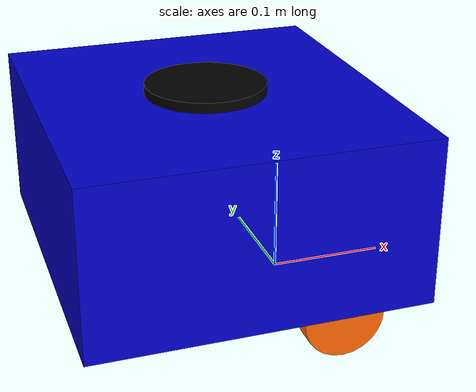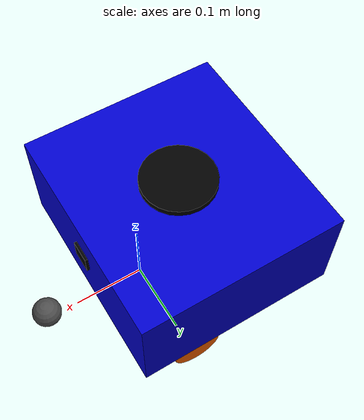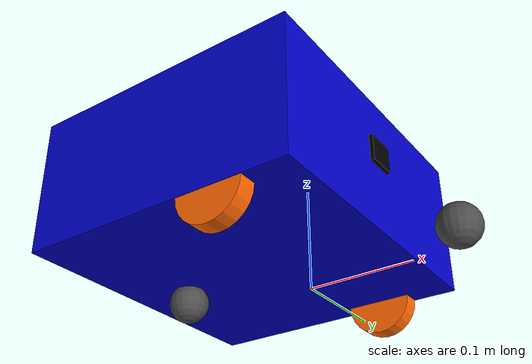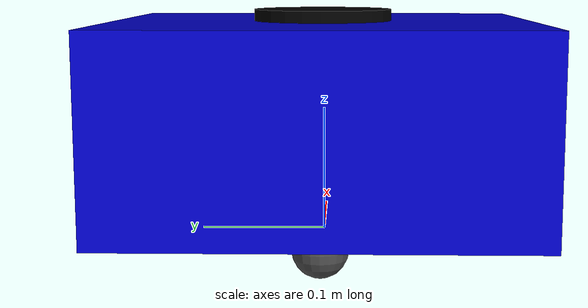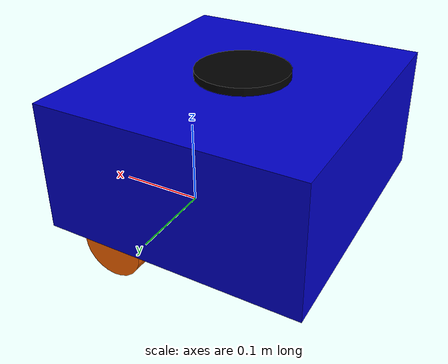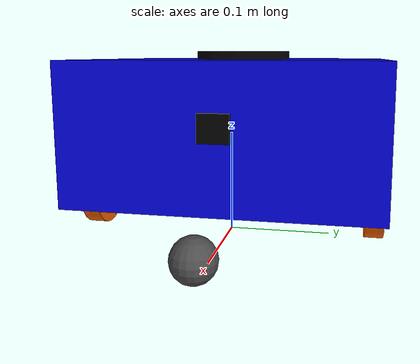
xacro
<?xml version="1.0"?>
<robot name="disaster_robot" xmlns:xacro="http://www.ros.org/wiki/xacro">
  <xacro:property name="robot_name"         value="disaster_robot"/>
  <xacro:property name="base_length"        value="0.281"/>
  <xacro:property name="base_width"         value="0.306"/>
  <xacro:property name="base_height"        value="0.141"/>
  <xacro:property name="base_mass"          value="1.3729096"/>
  <xacro:property name="wheel_radius"       value="0.033"/>
  <xacro:property name="wheel_width"        value="0.018"/>
  <xacro:property name="wheel_mass"         value="0.02850"/>
  <xacro:property name="wheel_separation"   value="0.287"/>  <!-- distance between wheel centres -->
  <xacro:property name="caster_radius"      value="0.020"/>

  <xacro:property name="lidar_x"            value="-0.064"/>
  <xacro:property name="lidar_y"            value="0.0"/>
  <xacro:property name="lidar_z"            value="0.122"/>
  <xacro:property name="lidar_range_min"    value="0.25"/>  <!-- increased: 0.12 caused self-hits -->
  <xacro:property name="lidar_range_max"    value="12.0"/>
  <xacro:property name="lidar_samples"      value="360"/>
  <xacro:property name="lidar_update_rate"  value="10"/>

  <xacro:property name="camera_x"           value="0.073"/>
  <xacro:property name="camera_y"           value="0.0"/>
  <xacro:property name="camera_z"           value="0.082"/>
  <xacro:property name="camera_width"       value="640"/>
  <xacro:property name="camera_height"      value="480"/>
  <xacro:property name="camera_fps"         value="30"/>
  <xacro:property name="camera_fov"         value="1.3962634"/>  <!-- 80 degrees -->

  <material name="black">  <color rgba="0.0 0.0 0.0 1.0"/></material>
  <material name="dark">   <color rgba="0.3 0.3 0.3 1.0"/></material>
  <material name="light">  <color rgba="0.8 0.8 0.8 1.0"/></material>
  <material name="blue">   <color rgba="0.0 0.0 0.8 1.0"/></material>
  <material name="green">  <color rgba="0.0 0.8 0.0 1.0"/></material>
  <material name="grey">   <color rgba="0.5 0.5 0.5 1.0"/></material>
  <material name="orange"> <color rgba="1.0 0.4 0.0 1.0"/></material>
  <material name="white">  <color rgba="1.0 1.0 1.0 1.0"/></material>

  <xacro:macro name="inertia_box" params="m x y z">
    <inertial>
      <mass value="${m}"/>
      <inertia ixx="${m*(y*y+z*z)/12}" ixy="0" ixz="0"
               iyy="${m*(x*x+z*z)/12}" iyz="0"
               izz="${m*(x*x+y*y)/12}"/>
    </inertial>
  </xacro:macro>

  <xacro:macro name="inertia_cylinder" params="m r h">
    <inertial>
      <mass value="${m}"/>
      <inertia ixx="${m*(3*r*r+h*h)/12}" ixy="0" ixz="0"
               iyy="${m*(3*r*r+h*h)/12}" iyz="0"
               izz="${m*r*r/2}"/>
    </inertial>
  </xacro:macro>

  <xacro:macro name="inertia_sphere" params="m r">
    <inertial>
      <mass value="${m}"/>
      <inertia ixx="${2*m*r*r/5}" ixy="0" ixz="0"
               iyy="${2*m*r*r/5}" iyz="0"
               izz="${2*m*r*r/5}"/>
    </inertial>
  </xacro:macro>

  <link name="base_footprint"/>

  <joint name="base_joint" type="fixed">
    <parent link="base_footprint"/>
    <child  link="base_link"/>
    <origin xyz="0 0 ${wheel_radius}" rpy="0 0 0"/>
  </joint>

  <link name="base_link">
    <visual>
      <origin xyz="-0.064 0 ${base_height/2}" rpy="0 0 0"/>
      <geometry>
        <box size="${base_length} ${base_width} ${base_height}"/>
      </geometry>
      <material name="blue"/>
    </visual>
    <collision>
      <origin xyz="-0.064 0 ${base_height/2}" rpy="0 0 0"/>  <!-- FIXED: bottom of body at wheel-center height, not 3.75cm underground -->
      <geometry>
        <box size="${base_length} ${base_width} ${base_height}"/>
      </geometry>
    </collision>
    <xacro:inertia_box m="${base_mass}" x="${base_length}" y="${base_width}" z="${base_height}"/>
  </link>

  <xacro:macro name="wheel" params="prefix y_reflect">
    <link name="${prefix}_wheel_link">
      <visual>
        <origin xyz="0 0 0" rpy="${pi/2} 0 0"/>
        <geometry>
          <cylinder radius="${wheel_radius}" length="${wheel_width}"/>
        </geometry>
        <material name="orange"/>
      </visual>
      <collision>
        <origin xyz="0 0 0" rpy="${pi/2} 0 0"/>
        <geometry>
          <cylinder radius="${wheel_radius}" length="${wheel_width}"/>
        </geometry>
      </collision>
      <xacro:inertia_cylinder m="${wheel_mass}" r="${wheel_radius}" h="${wheel_width}"/>
    </link>

    <joint name="${prefix}_wheel_joint" type="continuous">
      <parent link="base_link"/>
      <child  link="${prefix}_wheel_link"/>
      <origin xyz="0.0 ${y_reflect * wheel_separation / 2} 0.0" rpy="0 0 0"/>
      <axis xyz="0 1 0"/>
      <dynamics damping="0.001" friction="0.0"/>  <!-- minimal: joint friction was blocking motor -->
    </joint>
  </xacro:macro>

  <xacro:wheel prefix="left"  y_reflect=" 1"/>
  <xacro:wheel prefix="right" y_reflect="-1"/>

  <xacro:macro name="caster" params="prefix x_pos">
    <link name="${prefix}_caster_link">
      <visual>
        <origin xyz="0 0 0" rpy="0 0 0"/>
        <geometry><sphere radius="${caster_radius}"/></geometry>
        <material name="dark"/>
      </visual>
      <collision>
        <origin xyz="0 0 0" rpy="0 0 0"/>
        <geometry><sphere radius="${caster_radius}"/></geometry>
      </collision>
      <xacro:inertia_sphere m="0.005" r="${caster_radius}"/>
    </link>
    <joint name="${prefix}_caster_joint" type="fixed">
      <parent link="base_link"/>
      <child  link="${prefix}_caster_link"/>
      <origin xyz="${x_pos} 0 ${-wheel_radius + caster_radius}" rpy="0 0 0"/>
    </joint>
  </xacro:macro>

  <xacro:caster prefix="front" x_pos=" 0.1435"/>
  <xacro:caster prefix="rear"  x_pos="-0.1435"/>

  <link name="base_scan">
    <visual>
      <origin xyz="0 0 0" rpy="0 0 0"/>
      <geometry><cylinder radius="0.0508" length="0.055"/></geometry>
      <material name="black"/>
    </visual>
    <collision>
      <origin xyz="0 0 0" rpy="0 0 0"/>
      <geometry><cylinder radius="0.0508" length="0.055"/></geometry>
    </collision>
    <xacro:inertia_cylinder m="0.114" r="0.0508" h="0.055"/>
  </link>

  <joint name="scan_joint" type="fixed">
    <parent link="base_link"/>
    <child  link="base_scan"/>
    <origin xyz="${lidar_x} ${lidar_y} ${lidar_z}" rpy="0 0 0"/>
  </joint>

  <link name="camera_link">
    <visual>
      <origin xyz="0 0 0" rpy="0 0 0"/>
      <geometry><box size="0.015 0.030 0.027"/></geometry>
      <material name="black"/>
    </visual>
    <collision>
      <origin xyz="0 0 0" rpy="0 0 0"/>
      <geometry><box size="0.015 0.030 0.027"/></geometry>
    </collision>
    <xacro:inertia_box m="0.035" x="0.015" y="0.030" z="0.027"/>
  </link>

  <joint name="camera_joint" type="fixed">
    <parent link="base_link"/>
    <child  link="camera_link"/>
    <origin xyz="${camera_x} ${camera_y} ${camera_z}" rpy="0 0 0"/>
  </joint>

  <link name="camera_rgb_optical_frame"/>
  <joint name="camera_optical_joint" type="fixed">
    <parent link="camera_link"/>
    <child  link="camera_rgb_optical_frame"/>
    <origin xyz="0 0 0" rpy="${-pi/2} 0 ${-pi/2}"/>
  </joint>

  <!--  IMU SENSOR  -->
  <link name="imu_link">
    <visual>
      <origin xyz="0 0 0" rpy="0 0 0"/>
      <geometry><box size="0.01 0.01 0.01"/></geometry>
      <material name="grey"/>
    </visual>
    <collision>
      <origin xyz="0 0 0" rpy="0 0 0"/>
      <geometry><box size="0.01 0.01 0.01"/></geometry>
    </collision>
    <xacro:inertia_box m="0.01" x="0.01" y="0.01" z="0.01"/>
  </link>

  <joint name="imu_joint" type="fixed">
    <parent link="base_link"/>
    <child  link="imu_link"/>
    <origin xyz="-0.032 0 0.068" rpy="0 0 0"/>
  </joint>

  <gazebo reference="base_link">
    <material>Gazebo/Blue</material>
  </gazebo>
  <gazebo reference="left_wheel_link">
    <material>Gazebo/Orange</material>
  </gazebo>
  <gazebo reference="right_wheel_link">
    <material>Gazebo/Orange</material>
  </gazebo>
  <gazebo reference="camera_link">
    <material>Gazebo/Black</material>
  </gazebo>
  <gazebo reference="base_scan">
    <material>Gazebo/FlatBlack</material>
  </gazebo>

  <!--  Diff DRIVE  -->
  <gazebo>
    <plugin name="diff_drive_controller"
            filename="libgazebo_ros_diff_drive.so">

      <ros>
        <namespace>/</namespace>
      </ros>

      <left_joint>left_wheel_joint</left_joint>
      <right_joint>right_wheel_joint</right_joint>

      <wheel_separation>${wheel_separation}</wheel_separation>
      <wheel_diameter>${2 * wheel_radius}</wheel_diameter>

      <command_topic>/cmd_vel</command_topic>
      <odometry_topic>odom</odometry_topic>

      <odometry_frame>odom</odometry_frame>
      <robot_base_frame>base_footprint</robot_base_frame>

      <publish_odom>true</publish_odom>
      <publish_odom_tf>true</publish_odom_tf>

      <max_wheel_torque>20</max_wheel_torque>
      <max_wheel_acceleration>1.0</max_wheel_acceleration>
      <update_rate>30</update_rate>
    </plugin>
  </gazebo>

  <gazebo>
    <plugin name="joint_state_publisher"
            filename="libgazebo_ros_joint_state_publisher.so">
      <ros>
        <namespace>/</namespace>
      </ros>

      <update_rate>50</update_rate>

      <joint_name>left_wheel_joint</joint_name>
      <joint_name>right_wheel_joint</joint_name>
    </plugin>
  </gazebo>

  <gazebo reference="base_scan">
    <sensor type="ray" name="lidar_sensor">
      <pose>0 0 0 0 0 0</pose>
      <visualize>false</visualize>
      <update_rate>${lidar_update_rate}</update_rate>

      <ray>
        <scan>
          <horizontal>
            <samples>${lidar_samples}</samples>
            <resolution>1</resolution>
            <min_angle>-3.14159265</min_angle>
            <max_angle> 3.14159265</max_angle>
          </horizontal>
        </scan>
        <range>
          <min>${lidar_range_min}</min>
          <max>${lidar_range_max}</max>
          <resolution>0.015</resolution>
        </range>
        <!-- Gaussian noise to simulate real LiDAR -->
        <noise>
          <type>gaussian</type>
          <mean>0.0</mean>
          <stddev>0.01</stddev>
        </noise>
      </ray>

      <plugin name="lidar_ros_plugin" filename="libgazebo_ros_ray_sensor.so">
        <ros>
          <namespace>/</namespace>
          <remapping>~/out:=scan</remapping>
        </ros>
        <output_type>sensor_msgs/LaserScan</output_type>
        <frame_name>base_scan</frame_name>
      </plugin>
    </sensor>
  </gazebo>

  <gazebo reference="camera_link">
    <sensor type="camera" name="camera_sensor">
      <update_rate>${camera_fps}</update_rate>
      <visualize>false</visualize>

      <camera name="camera">
        <horizontal_fov>${camera_fov}</horizontal_fov>
        <image>
          <width>${camera_width}</width>
          <height>${camera_height}</height>
          <format>R8G8B8</format>
        </image>
        <clip>
          <near>0.02</near>
          <far>300</far>
        </clip>
        <!-- Noise to simulate real camera in dusty/dark conditions -->
        <noise>
          <type>gaussian</type>
          <mean>0.0</mean>
          <stddev>0.007</stddev>
        </noise>
      </camera>

      <plugin name="camera_ros_plugin" filename="libgazebo_ros_camera.so">
        <ros>
          <namespace>/</namespace>
          <remapping>image_raw:=camera/image_raw</remapping>
          <remapping>camera_info:=camera/camera_info</remapping>
        </ros>
        <camera_name>camera</camera_name>
        <frame_name>camera_rgb_optical_frame</frame_name>
        <hack_baseline>0.07</hack_baseline>
      </plugin>
    </sensor>
  </gazebo>

  <gazebo reference="imu_link">
    <sensor name="imu_sensor" type="imu">
      <always_on>true</always_on>
      <update_rate>200</update_rate>
      <visualize>false</visualize>

      <imu>
        <!-- Angular velocity noise (gyroscope) -->
        <angular_velocity>
          <x><noise type="gaussian"><mean>0.0</mean><stddev>2e-4</stddev><bias_mean>7.5e-6</bias_mean><bias_stddev>8e-7</bias_stddev></noise></x>
          <y><noise type="gaussian"><mean>0.0</mean><stddev>2e-4</stddev><bias_mean>7.5e-6</bias_mean><bias_stddev>8e-7</bias_stddev></noise></y>
          <z><noise type="gaussian"><mean>0.0</mean><stddev>2e-4</stddev><bias_mean>7.5e-6</bias_mean><bias_stddev>8e-7</bias_stddev></noise></z>
        </angular_velocity>
        <!-- Linear acceleration noise (accelerometer) -->
        <linear_acceleration>
          <x><noise type="gaussian"><mean>0.0</mean><stddev>1.7e-2</stddev><bias_mean>0.1</bias_mean><bias_stddev>0.001</bias_stddev></noise></x>
          <y><noise type="gaussian"><mean>0.0</mean><stddev>1.7e-2</stddev><bias_mean>0.1</bias_mean><bias_stddev>0.001</bias_stddev></noise></y>
          <z><noise type="gaussian"><mean>0.0</mean><stddev>1.7e-2</stddev><bias_mean>0.1</bias_mean><bias_stddev>0.001</bias_stddev></noise></z>
        </linear_acceleration>
      </imu>

      <plugin name="imu_ros_plugin" filename="libgazebo_ros_imu_sensor.so">
        <ros>
          <namespace>/</namespace>
          <remapping>~/out:=imu</remapping>
        </ros>
        <initial_orientation_as_reference>false</initial_orientation_as_reference>
        <frame_name>imu_link</frame_name>
      </plugin>
    </sensor>
  </gazebo>

  <gazebo reference="left_wheel_link">
    <mu1>1.0</mu1>
    <mu2>0.5</mu2>
    <fdir1>0 1 0</fdir1>
    <kp>100000.0</kp>
    <kd>1.0</kd>
    <minDepth>0.001</minDepth>
    <maxVel>1.0</maxVel>
  </gazebo>
  <gazebo reference="right_wheel_link">
    <mu1>1.0</mu1>
    <mu2>0.5</mu2>
    <fdir1>0 1 0</fdir1>
    <kp>100000.0</kp>
    <kd>1.0</kd>
    <minDepth>0.001</minDepth>
    <maxVel>1.0</maxVel>
  </gazebo>
  <!-- Casters: zero friction so they slide freely, no bounce -->
  <gazebo reference="front_caster_link">
    <mu1>0.0</mu1>
    <mu2>0.0</mu2>
  </gazebo>
  <gazebo reference="rear_caster_link">
    <mu1>0.0</mu1>
    <mu2>0.0</mu2>
  </gazebo>

</robot>
